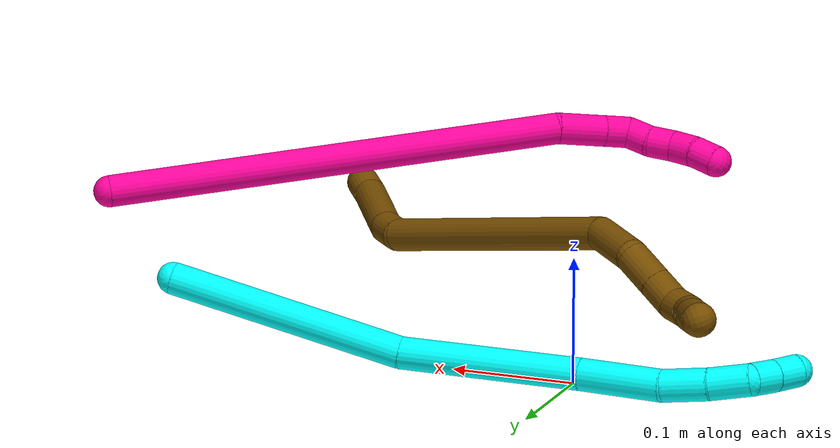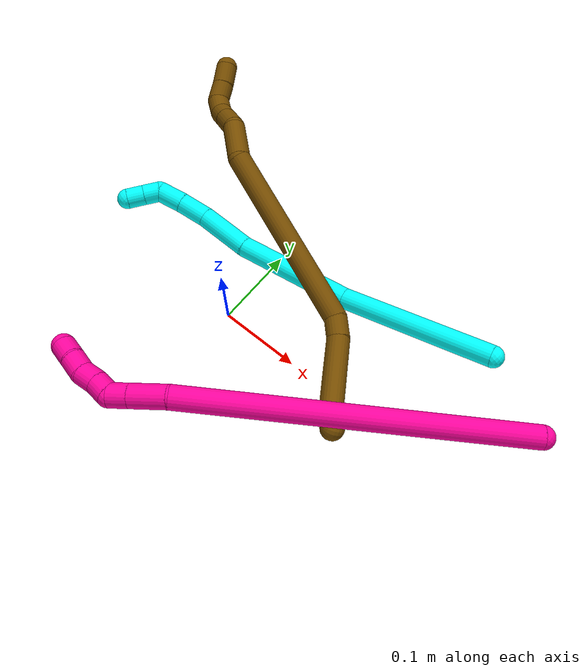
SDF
<sdf version="1.7">
 <world name="default">
  <model name="3">
   <static>0</static>
   <link name="3">
    <collision name="collision-cylinder-e_1_1_4">
     <pose>-0.07893 -0.010625 -0.047513 2.9216 -1.01809 -2.75086</pose>
     <geometry><cylinder><radius>0.0125</radius><length>0.185475</length></cylinder></geometry>
     <surface>
      <friction><ode><mu>1.16</mu><mu2>1.16</mu2><slip1>0</slip1><slip2>0</slip2></ode></friction>
      <contact><ode><kp>1e+06</kp><kd>1</kd><max_vel>0</max_vel><min_depth>0.001</min_depth></ode></contact>
     </surface>
    </collision>
    <visual name="visual-cylinder-e_1_1_4">
     <pose>-0.07893 -0.010625 -0.047513 2.9216 -1.01809 -2.75086</pose>
     <geometry><cylinder><radius>0.0125</radius><length>0.185475</length></cylinder></geometry>
     <material><ambient>0.003922 1 0.996078 1</ambient></material>
    </visual>
    <collision name="collision-cylinder-e_2_4_5">
     <pose>-0.218143 -0.042217 -0.124054 2.51603 -1.0348 -2.10811</pose>
     <geometry><cylinder><radius>0.0125</radius><length>0.140234</length></cylinder></geometry>
     <surface>
      <friction><ode><mu>1.16</mu><mu2>1.16</mu2><slip1>0</slip1><slip2>0</slip2></ode></friction>
      <contact><ode><kp>1e+06</kp><kd>1</kd><max_vel>0</max_vel><min_depth>0.001</min_depth></ode></contact>
     </surface>
    </collision>
    <visual name="visual-cylinder-e_2_4_5">
     <pose>-0.218143 -0.042217 -0.124054 2.51603 -1.0348 -2.10811</pose>
     <geometry><cylinder><radius>0.0125</radius><length>0.140234</length></cylinder></geometry>
     <material><ambient>0.003922 1 0.996078 1</ambient></material>
    </visual>
    <collision name="collision-cylinder-e_3_5_6">
     <pose>-0.308805 -0.071844 -0.161922 2.36656 -1.18395 -2.0505</pose>
     <geometry><cylinder><radius>0.0125</radius><length>0.065603</length></cylinder></geometry>
     <surface>
      <friction><ode><mu>1.16</mu><mu2>1.16</mu2><slip1>0</slip1><slip2>0</slip2></ode></friction>
      <contact><ode><kp>1e+06</kp><kd>1</kd><max_vel>0</max_vel><min_depth>0.001</min_depth></ode></contact>
     </surface>
    </collision>
    <visual name="visual-cylinder-e_3_5_6">
     <pose>-0.308805 -0.071844 -0.161922 2.36656 -1.18395 -2.0505</pose>
     <geometry><cylinder><radius>0.0125</radius><length>0.065603</length></cylinder></geometry>
     <material><ambient>0.003922 1 0.996078 1</ambient></material>
    </visual>
    <collision name="collision-cylinder-e_4_6_7">
     <pose>-0.354097 -0.088186 -0.176738 2.23187 -0.992611 -1.6725</pose>
     <geometry><cylinder><radius>0.0125</radius><length>0.035617</length></cylinder></geometry>
     <surface>
      <friction><ode><mu>1.16</mu><mu2>1.16</mu2><slip1>0</slip1><slip2>0</slip2></ode></friction>
      <contact><ode><kp>1e+06</kp><kd>1</kd><max_vel>0</max_vel><min_depth>0.001</min_depth></ode></contact>
     </surface>
    </collision>
    <visual name="visual-cylinder-e_4_6_7">
     <pose>-0.354097 -0.088186 -0.176738 2.23187 -0.992611 -1.6725</pose>
     <geometry><cylinder><radius>0.0125</radius><length>0.035617</length></cylinder></geometry>
     <material><ambient>0.003922 1 0.996078 1</ambient></material>
    </visual>
    <collision name="collision-cylinder-e_5_7_8">
     <pose>-0.381291 -0.103823 -0.188708 2.21655 -0.889319 -1.52546</pose>
     <geometry><cylinder><radius>0.0125</radius><length>0.031625</length></cylinder></geometry>
     <surface>
      <friction><ode><mu>1.16</mu><mu2>1.16</mu2><slip1>0</slip1><slip2>0</slip2></ode></friction>
      <contact><ode><kp>1e+06</kp><kd>1</kd><max_vel>0</max_vel><min_depth>0.001</min_depth></ode></contact>
     </surface>
    </collision>
    <visual name="visual-cylinder-e_5_7_8">
     <pose>-0.381291 -0.103823 -0.188708 2.21655 -0.889319 -1.52546</pose>
     <geometry><cylinder><radius>0.0125</radius><length>0.031625</length></cylinder></geometry>
     <material><ambient>0.003922 1 0.996078 1</ambient></material>
    </visual>
    <collision name="collision-cylinder-e_6_8_9">
     <pose>-0.395968 -0.116784 -0.20327 2.61283 -0.236929 -0.828433</pose>
     <geometry><cylinder><radius>0.0125</radius><length>0.020415</length></cylinder></geometry>
     <surface>
      <friction><ode><mu>1.16</mu><mu2>1.16</mu2><slip1>0</slip1><slip2>0</slip2></ode></friction>
      <contact><ode><kp>1e+06</kp><kd>1</kd><max_vel>0</max_vel><min_depth>0.001</min_depth></ode></contact>
     </surface>
    </collision>
    <visual name="visual-cylinder-e_6_8_9">
     <pose>-0.395968 -0.116784 -0.20327 2.61283 -0.236929 -0.828433</pose>
     <geometry><cylinder><radius>0.0125</radius><length>0.020415</length></cylinder></geometry>
     <material><ambient>0.003922 1 0.996078 1</ambient></material>
    </visual>
    <collision name="collision-cylinder-e_7_9_2">
     <pose>-0.400466 -0.127248 -0.220575 2.58323 -0.20129 -0.677397</pose>
     <geometry><cylinder><radius>0.0125</radius><length>0.02103</length></cylinder></geometry>
     <surface>
      <friction><ode><mu>1.16</mu><mu2>1.16</mu2><slip1>0</slip1><slip2>0</slip2></ode></friction>
      <contact><ode><kp>1e+06</kp><kd>1</kd><max_vel>0</max_vel><min_depth>0.001</min_depth></ode></contact>
     </surface>
    </collision>
    <visual name="visual-cylinder-e_7_9_2">
     <pose>-0.400466 -0.127248 -0.220575 2.58323 -0.20129 -0.677397</pose>
     <geometry><cylinder><radius>0.0125</radius><length>0.02103</length></cylinder></geometry>
     <material><ambient>0.003922 1 0.996078 1</ambient></material>
    </visual>
    <collision name="collision-sphere-2">
     <pose>-0.402569 -0.132706 -0.229313 0 -0 0</pose>
     <geometry><sphere><radius>0.0125</radius></sphere></geometry>
     <surface>
      <friction><ode><mu>1.16</mu><mu2>1.16</mu2><slip1>0</slip1><slip2>0</slip2></ode></friction>
      <contact><ode><kp>1e+06</kp><kd>1</kd><max_vel>0</max_vel><min_depth>0.001</min_depth></ode></contact>
     </surface>
    </collision>
    <visual name="visual-sphere-2">
     <pose>-0.402569 -0.132706 -0.229313 0 -0 0</pose>
     <geometry><sphere><radius>0.0125</radius></sphere></geometry>
     <material><ambient>0.003922 1 0.996078 1</ambient></material>
    </visual>
    <collision name="collision-sphere-9">
     <pose>-0.398364 -0.121789 -0.211837 0 -0 0</pose>
     <geometry><sphere><radius>0.0125</radius></sphere></geometry>
     <surface>
      <friction><ode><mu>1.16</mu><mu2>1.16</mu2><slip1>0</slip1><slip2>0</slip2></ode></friction>
      <contact><ode><kp>1e+06</kp><kd>1</kd><max_vel>0</max_vel><min_depth>0.001</min_depth></ode></contact>
     </surface>
    </collision>
    <visual name="visual-sphere-9">
     <pose>-0.398364 -0.121789 -0.211837 0 -0 0</pose>
     <geometry><sphere><radius>0.0125</radius></sphere></geometry>
     <material><ambient>0.003922 1 0.996078 1</ambient></material>
    </visual>
    <collision name="collision-sphere-4">
     <pose>-0.157859 -0.021249 -0.095026 0 -0 0</pose>
     <geometry><sphere><radius>0.0125</radius></sphere></geometry>
     <surface>
      <friction><ode><mu>1.16</mu><mu2>1.16</mu2><slip1>0</slip1><slip2>0</slip2></ode></friction>
      <contact><ode><kp>1e+06</kp><kd>1</kd><max_vel>0</max_vel><min_depth>0.001</min_depth></ode></contact>
     </surface>
    </collision>
    <visual name="visual-sphere-4">
     <pose>-0.157859 -0.021249 -0.095026 0 -0 0</pose>
     <geometry><sphere><radius>0.0125</radius></sphere></geometry>
     <material><ambient>0.003922 1 0.996078 1</ambient></material>
    </visual>
    <collision name="collision-sphere-1">
     <geometry><sphere><radius>0.0125</radius></sphere></geometry>
     <surface>
      <friction><ode><mu>1.16</mu><mu2>1.16</mu2><slip1>0</slip1><slip2>0</slip2></ode></friction>
      <contact><ode><kp>1e+06</kp><kd>1</kd><max_vel>0</max_vel><min_depth>0.001</min_depth></ode></contact>
     </surface>
    </collision>
    <visual name="visual-sphere-1">
     <geometry><sphere><radius>0.0125</radius></sphere></geometry>
     <material><ambient>0.003922 1 0.996078 1</ambient></material>
    </visual>
    <collision name="collision-sphere-8">
     <pose>-0.393572 -0.111779 -0.194703 0 -0 0</pose>
     <geometry><sphere><radius>0.0125</radius></sphere></geometry>
     <surface>
      <friction><ode><mu>1.16</mu><mu2>1.16</mu2><slip1>0</slip1><slip2>0</slip2></ode></friction>
      <contact><ode><kp>1e+06</kp><kd>1</kd><max_vel>0</max_vel><min_depth>0.001</min_depth></ode></contact>
     </surface>
    </collision>
    <visual name="visual-sphere-8">
     <pose>-0.393572 -0.111779 -0.194703 0 -0 0</pose>
     <geometry><sphere><radius>0.0125</radius></sphere></geometry>
     <material><ambient>0.003922 1 0.996078 1</ambient></material>
    </visual>
    <collision name="collision-sphere-5">
     <pose>-0.278427 -0.063185 -0.153081 0 -0 0</pose>
     <geometry><sphere><radius>0.0125</radius></sphere></geometry>
     <surface>
      <friction><ode><mu>1.16</mu><mu2>1.16</mu2><slip1>0</slip1><slip2>0</slip2></ode></friction>
      <contact><ode><kp>1e+06</kp><kd>1</kd><max_vel>0</max_vel><min_depth>0.001</min_depth></ode></contact>
     </surface>
    </collision>
    <visual name="visual-sphere-5">
     <pose>-0.278427 -0.063185 -0.153081 0 -0 0</pose>
     <geometry><sphere><radius>0.0125</radius></sphere></geometry>
     <material><ambient>0.003922 1 0.996078 1</ambient></material>
    </visual>
    <collision name="collision-sphere-6">
     <pose>-0.339183 -0.080504 -0.170763 0 -0 0</pose>
     <geometry><sphere><radius>0.0125</radius></sphere></geometry>
     <surface>
      <friction><ode><mu>1.16</mu><mu2>1.16</mu2><slip1>0</slip1><slip2>0</slip2></ode></friction>
      <contact><ode><kp>1e+06</kp><kd>1</kd><max_vel>0</max_vel><min_depth>0.001</min_depth></ode></contact>
     </surface>
    </collision>
    <visual name="visual-sphere-6">
     <pose>-0.339183 -0.080504 -0.170763 0 -0 0</pose>
     <geometry><sphere><radius>0.0125</radius></sphere></geometry>
     <material><ambient>0.003922 1 0.996078 1</ambient></material>
    </visual>
    <collision name="collision-sphere-7">
     <pose>-0.369011 -0.095868 -0.182714 0 -0 0</pose>
     <geometry><sphere><radius>0.0125</radius></sphere></geometry>
     <surface>
      <friction><ode><mu>1.16</mu><mu2>1.16</mu2><slip1>0</slip1><slip2>0</slip2></ode></friction>
      <contact><ode><kp>1e+06</kp><kd>1</kd><max_vel>0</max_vel><min_depth>0.001</min_depth></ode></contact>
     </surface>
    </collision>
    <visual name="visual-sphere-7">
     <pose>-0.369011 -0.095868 -0.182714 0 -0 0</pose>
     <geometry><sphere><radius>0.0125</radius></sphere></geometry>
     <material><ambient>0.003922 1 0.996078 1</ambient></material>
    </visual>
    <inertial>
     <pose>-0.21333 -0.048177 -0.115766 0 -0 0</pose>
     <mass>0.5</mass>
     <inertia>
      <ixx>-0.000584</ixx>
      <ixy>0</ixy>
      <ixz>0</ixz>
      <iyy>0.000514</iyy>
      <iyz>0</iyz>
      <izz>0.00082</izz>
     </inertia>
    </inertial>
   </link>
   <pose>0.282708 0.118243 0.084535 -1.06201 -0.119739 -0.39834</pose>
  </model>
  <model name="12">
   <static>0</static>
   <link name="12">
    <collision name="collision-cylinder-e_1_1_4">
     <pose>-0.009031 0.004688 -0.001016 -1.78414 -1.08258 1.28106</pose>
     <geometry><cylinder><radius>0.0125</radius><length>0.020452</length></cylinder></geometry>
     <surface>
      <friction><ode><mu>1.16</mu><mu2>1.16</mu2><slip1>0</slip1><slip2>0</slip2></ode></friction>
      <contact><ode><kp>1e+06</kp><kd>1</kd><max_vel>0</max_vel><min_depth>0.001</min_depth></ode></contact>
     </surface>
    </collision>
    <visual name="visual-cylinder-e_1_1_4">
     <pose>-0.009031 0.004688 -0.001016 -1.78414 -1.08258 1.28106</pose>
     <geometry><cylinder><radius>0.0125</radius><length>0.020452</length></cylinder></geometry>
     <material><ambient>0.466667 0.301961 0 1</ambient></material>
    </visual>
    <collision name="collision-cylinder-e_2_4_5">
     <pose>-0.056456 0.020178 -0.002693 -1.63202 -1.29604 1.35546</pose>
     <geometry><cylinder><radius>0.0125</radius><length>0.07978</length></cylinder></geometry>
     <surface>
      <friction><ode><mu>1.16</mu><mu2>1.16</mu2><slip1>0</slip1><slip2>0</slip2></ode></friction>
      <contact><ode><kp>1e+06</kp><kd>1</kd><max_vel>0</max_vel><min_depth>0.001</min_depth></ode></contact>
     </surface>
    </collision>
    <visual name="visual-cylinder-e_2_4_5">
     <pose>-0.056456 0.020178 -0.002693 -1.63202 -1.29604 1.35546</pose>
     <geometry><cylinder><radius>0.0125</radius><length>0.07978</length></cylinder></geometry>
     <material><ambient>0.466667 0.301961 0 1</ambient></material>
    </visual>
    <collision name="collision-cylinder-e_3_5_6">
     <pose>-0.106057 0.034224 -0.006202 -2.29116 -1.20326 1.97539</pose>
     <geometry><cylinder><radius>0.0125</radius><length>0.024019</length></cylinder></geometry>
     <surface>
      <friction><ode><mu>1.16</mu><mu2>1.16</mu2><slip1>0</slip1><slip2>0</slip2></ode></friction>
      <contact><ode><kp>1e+06</kp><kd>1</kd><max_vel>0</max_vel><min_depth>0.001</min_depth></ode></contact>
     </surface>
    </collision>
    <visual name="visual-cylinder-e_3_5_6">
     <pose>-0.106057 0.034224 -0.006202 -2.29116 -1.20326 1.97539</pose>
     <geometry><cylinder><radius>0.0125</radius><length>0.024019</length></cylinder></geometry>
     <material><ambient>0.466667 0.301961 0 1</ambient></material>
    </visual>
    <collision name="collision-cylinder-e_4_6_7">
     <pose>-0.194381 0.054012 -0.077411 -2.90413 -0.831353 2.61368</pose>
     <geometry><cylinder><radius>0.0125</radius><length>0.208751</length></cylinder></geometry>
     <surface>
      <friction><ode><mu>1.16</mu><mu2>1.16</mu2><slip1>0</slip1><slip2>0</slip2></ode></friction>
      <contact><ode><kp>1e+06</kp><kd>1</kd><max_vel>0</max_vel><min_depth>0.001</min_depth></ode></contact>
     </surface>
    </collision>
    <visual name="visual-cylinder-e_4_6_7">
     <pose>-0.194381 0.054012 -0.077411 -2.90413 -0.831353 2.61368</pose>
     <geometry><cylinder><radius>0.0125</radius><length>0.208751</length></cylinder></geometry>
     <material><ambient>0.466667 0.301961 0 1</ambient></material>
    </visual>
    <collision name="collision-cylinder-e_5_7_8">
     <pose>-0.292691 0.07953 -0.152168 -2.18998 -1.09137 1.73415</pose>
     <geometry><cylinder><radius>0.0125</radius><length>0.047771</length></cylinder></geometry>
     <surface>
      <friction><ode><mu>1.16</mu><mu2>1.16</mu2><slip1>0</slip1><slip2>0</slip2></ode></friction>
      <contact><ode><kp>1e+06</kp><kd>1</kd><max_vel>0</max_vel><min_depth>0.001</min_depth></ode></contact>
     </surface>
    </collision>
    <visual name="visual-cylinder-e_5_7_8">
     <pose>-0.292691 0.07953 -0.152168 -2.18998 -1.09137 1.73415</pose>
     <geometry><cylinder><radius>0.0125</radius><length>0.047771</length></cylinder></geometry>
     <material><ambient>0.466667 0.301961 0 1</ambient></material>
    </visual>
    <collision name="collision-cylinder-e_6_8_9">
     <pose>-0.322916 0.099696 -0.162987 -1.9472 -0.643797 0.911905</pose>
     <geometry><cylinder><radius>0.0125</radius><length>0.030097</length></cylinder></geometry>
     <surface>
      <friction><ode><mu>1.16</mu><mu2>1.16</mu2><slip1>0</slip1><slip2>0</slip2></ode></friction>
      <contact><ode><kp>1e+06</kp><kd>1</kd><max_vel>0</max_vel><min_depth>0.001</min_depth></ode></contact>
     </surface>
    </collision>
    <visual name="visual-cylinder-e_6_8_9">
     <pose>-0.322916 0.099696 -0.162987 -1.9472 -0.643797 0.911905</pose>
     <geometry><cylinder><radius>0.0125</radius><length>0.030097</length></cylinder></geometry>
     <material><ambient>0.466667 0.301961 0 1</ambient></material>
    </visual>
    <collision name="collision-cylinder-e_7_9_10">
     <pose>-0.33858 0.119177 -0.170697 -1.94831 -0.639515 0.907203</pose>
     <geometry><cylinder><radius>0.0125</radius><length>0.022222</length></cylinder></geometry>
     <surface>
      <friction><ode><mu>1.16</mu><mu2>1.16</mu2><slip1>0</slip1><slip2>0</slip2></ode></friction>
      <contact><ode><kp>1e+06</kp><kd>1</kd><max_vel>0</max_vel><min_depth>0.001</min_depth></ode></contact>
     </surface>
    </collision>
    <visual name="visual-cylinder-e_7_9_10">
     <pose>-0.33858 0.119177 -0.170697 -1.94831 -0.639515 0.907203</pose>
     <geometry><cylinder><radius>0.0125</radius><length>0.022222</length></cylinder></geometry>
     <material><ambient>0.466667 0.301961 0 1</ambient></material>
    </visual>
    <collision name="collision-cylinder-e_8_10_11">
     <pose>-0.35391 0.131157 -0.177415 -2.31962 -1.04564 1.84669</pose>
     <geometry><cylinder><radius>0.0125</radius><length>0.020106</length></cylinder></geometry>
     <surface>
      <friction><ode><mu>1.16</mu><mu2>1.16</mu2><slip1>0</slip1><slip2>0</slip2></ode></friction>
      <contact><ode><kp>1e+06</kp><kd>1</kd><max_vel>0</max_vel><min_depth>0.001</min_depth></ode></contact>
     </surface>
    </collision>
    <visual name="visual-cylinder-e_8_10_11">
     <pose>-0.35391 0.131157 -0.177415 -2.31962 -1.04564 1.84669</pose>
     <geometry><cylinder><radius>0.0125</radius><length>0.020106</length></cylinder></geometry>
     <material><ambient>0.466667 0.301961 0 1</ambient></material>
    </visual>
    <collision name="collision-cylinder-e_9_11_12">
     <pose>-0.373345 0.134769 -0.180623 0.34324 -1.54879 -0.335911</pose>
     <geometry><cylinder><radius>0.0125</radius><length>0.021477</length></cylinder></geometry>
     <surface>
      <friction><ode><mu>1.16</mu><mu2>1.16</mu2><slip1>0</slip1><slip2>0</slip2></ode></friction>
      <contact><ode><kp>1e+06</kp><kd>1</kd><max_vel>0</max_vel><min_depth>0.001</min_depth></ode></contact>
     </surface>
    </collision>
    <visual name="visual-cylinder-e_9_11_12">
     <pose>-0.373345 0.134769 -0.180623 0.34324 -1.54879 -0.335911</pose>
     <geometry><cylinder><radius>0.0125</radius><length>0.021477</length></cylinder></geometry>
     <material><ambient>0.466667 0.301961 0 1</ambient></material>
    </visual>
    <collision name="collision-cylinder-e_10_12_2">
     <pose>-0.396716 0.135253 -0.180997 -2.38403 -1.506 2.33842</pose>
     <geometry><cylinder><radius>0.0125</radius><length>0.025325</length></cylinder></geometry>
     <surface>
      <friction><ode><mu>1.16</mu><mu2>1.16</mu2><slip1>0</slip1><slip2>0</slip2></ode></friction>
      <contact><ode><kp>1e+06</kp><kd>1</kd><max_vel>0</max_vel><min_depth>0.001</min_depth></ode></contact>
     </surface>
    </collision>
    <visual name="visual-cylinder-e_10_12_2">
     <pose>-0.396716 0.135253 -0.180997 -2.38403 -1.506 2.33842</pose>
     <geometry><cylinder><radius>0.0125</radius><length>0.025325</length></cylinder></geometry>
     <material><ambient>0.466667 0.301961 0 1</ambient></material>
    </visual>
    <collision name="collision-sphere-2">
     <pose>-0.409352 0.135816 -0.181592 0 -0 0</pose>
     <geometry><sphere><radius>0.0125</radius></sphere></geometry>
     <surface>
      <friction><ode><mu>1.16</mu><mu2>1.16</mu2><slip1>0</slip1><slip2>0</slip2></ode></friction>
      <contact><ode><kp>1e+06</kp><kd>1</kd><max_vel>0</max_vel><min_depth>0.001</min_depth></ode></contact>
     </surface>
    </collision>
    <visual name="visual-sphere-2">
     <pose>-0.409352 0.135816 -0.181592 0 -0 0</pose>
     <geometry><sphere><radius>0.0125</radius></sphere></geometry>
     <material><ambient>0.466667 0.301961 0 1</ambient></material>
    </visual>
    <collision name="collision-sphere-12">
     <pose>-0.384081 0.13469 -0.180401 0 -0 0</pose>
     <geometry><sphere><radius>0.0125</radius></sphere></geometry>
     <surface>
      <friction><ode><mu>1.16</mu><mu2>1.16</mu2><slip1>0</slip1><slip2>0</slip2></ode></friction>
      <contact><ode><kp>1e+06</kp><kd>1</kd><max_vel>0</max_vel><min_depth>0.001</min_depth></ode></contact>
     </surface>
    </collision>
    <visual name="visual-sphere-12">
     <pose>-0.384081 0.13469 -0.180401 0 -0 0</pose>
     <geometry><sphere><radius>0.0125</radius></sphere></geometry>
     <material><ambient>0.466667 0.301961 0 1</ambient></material>
    </visual>
    <collision name="collision-sphere-11">
     <pose>-0.362608 0.134849 -0.180846 0 -0 0</pose>
     <geometry><sphere><radius>0.0125</radius></sphere></geometry>
     <surface>
      <friction><ode><mu>1.16</mu><mu2>1.16</mu2><slip1>0</slip1><slip2>0</slip2></ode></friction>
      <contact><ode><kp>1e+06</kp><kd>1</kd><max_vel>0</max_vel><min_depth>0.001</min_depth></ode></contact>
     </surface>
    </collision>
    <visual name="visual-sphere-11">
     <pose>-0.362608 0.134849 -0.180846 0 -0 0</pose>
     <geometry><sphere><radius>0.0125</radius></sphere></geometry>
     <material><ambient>0.466667 0.301961 0 1</ambient></material>
    </visual>
    <collision name="collision-sphere-10">
     <pose>-0.345211 0.127465 -0.173984 0 -0 0</pose>
     <geometry><sphere><radius>0.0125</radius></sphere></geometry>
     <surface>
      <friction><ode><mu>1.16</mu><mu2>1.16</mu2><slip1>0</slip1><slip2>0</slip2></ode></friction>
      <contact><ode><kp>1e+06</kp><kd>1</kd><max_vel>0</max_vel><min_depth>0.001</min_depth></ode></contact>
     </surface>
    </collision>
    <visual name="visual-sphere-10">
     <pose>-0.345211 0.127465 -0.173984 0 -0 0</pose>
     <geometry><sphere><radius>0.0125</radius></sphere></geometry>
     <material><ambient>0.466667 0.301961 0 1</ambient></material>
    </visual>
    <collision name="collision-sphere-9">
     <pose>-0.331949 0.11089 -0.167411 0 -0 0</pose>
     <geometry><sphere><radius>0.0125</radius></sphere></geometry>
     <surface>
      <friction><ode><mu>1.16</mu><mu2>1.16</mu2><slip1>0</slip1><slip2>0</slip2></ode></friction>
      <contact><ode><kp>1e+06</kp><kd>1</kd><max_vel>0</max_vel><min_depth>0.001</min_depth></ode></contact>
     </surface>
    </collision>
    <visual name="visual-sphere-9">
     <pose>-0.331949 0.11089 -0.167411 0 -0 0</pose>
     <geometry><sphere><radius>0.0125</radius></sphere></geometry>
     <material><ambient>0.466667 0.301961 0 1</ambient></material>
    </visual>
    <collision name="collision-sphere-4">
     <pose>-0.018062 0.009375 -0.002031 0 -0 0</pose>
     <geometry><sphere><radius>0.0125</radius></sphere></geometry>
     <surface>
      <friction><ode><mu>1.16</mu><mu2>1.16</mu2><slip1>0</slip1><slip2>0</slip2></ode></friction>
      <contact><ode><kp>1e+06</kp><kd>1</kd><max_vel>0</max_vel><min_depth>0.001</min_depth></ode></contact>
     </surface>
    </collision>
    <visual name="visual-sphere-4">
     <pose>-0.018062 0.009375 -0.002031 0 -0 0</pose>
     <geometry><sphere><radius>0.0125</radius></sphere></geometry>
     <material><ambient>0.466667 0.301961 0 1</ambient></material>
    </visual>
    <collision name="collision-sphere-1">
     <geometry><sphere><radius>0.0125</radius></sphere></geometry>
     <surface>
      <friction><ode><mu>1.16</mu><mu2>1.16</mu2><slip1>0</slip1><slip2>0</slip2></ode></friction>
      <contact><ode><kp>1e+06</kp><kd>1</kd><max_vel>0</max_vel><min_depth>0.001</min_depth></ode></contact>
     </surface>
    </collision>
    <visual name="visual-sphere-1">
     <geometry><sphere><radius>0.0125</radius></sphere></geometry>
     <material><ambient>0.466667 0.301961 0 1</ambient></material>
    </visual>
    <collision name="collision-sphere-8">
     <pose>-0.313883 0.088502 -0.158562 0 -0 0</pose>
     <geometry><sphere><radius>0.0125</radius></sphere></geometry>
     <surface>
      <friction><ode><mu>1.16</mu><mu2>1.16</mu2><slip1>0</slip1><slip2>0</slip2></ode></friction>
      <contact><ode><kp>1e+06</kp><kd>1</kd><max_vel>0</max_vel><min_depth>0.001</min_depth></ode></contact>
     </surface>
    </collision>
    <visual name="visual-sphere-8">
     <pose>-0.313883 0.088502 -0.158562 0 -0 0</pose>
     <geometry><sphere><radius>0.0125</radius></sphere></geometry>
     <material><ambient>0.466667 0.301961 0 1</ambient></material>
    </visual>
    <collision name="collision-sphere-5">
     <pose>-0.094849 0.03098 -0.003356 0 -0 0</pose>
     <geometry><sphere><radius>0.0125</radius></sphere></geometry>
     <surface>
      <friction><ode><mu>1.16</mu><mu2>1.16</mu2><slip1>0</slip1><slip2>0</slip2></ode></friction>
      <contact><ode><kp>1e+06</kp><kd>1</kd><max_vel>0</max_vel><min_depth>0.001</min_depth></ode></contact>
     </surface>
    </collision>
    <visual name="visual-sphere-5">
     <pose>-0.094849 0.03098 -0.003356 0 -0 0</pose>
     <geometry><sphere><radius>0.0125</radius></sphere></geometry>
     <material><ambient>0.466667 0.301961 0 1</ambient></material>
    </visual>
    <collision name="collision-sphere-6">
     <pose>-0.117264 0.037467 -0.009049 0 -0 0</pose>
     <geometry><sphere><radius>0.0125</radius></sphere></geometry>
     <surface>
      <friction><ode><mu>1.16</mu><mu2>1.16</mu2><slip1>0</slip1><slip2>0</slip2></ode></friction>
      <contact><ode><kp>1e+06</kp><kd>1</kd><max_vel>0</max_vel><min_depth>0.001</min_depth></ode></contact>
     </surface>
    </collision>
    <visual name="visual-sphere-6">
     <pose>-0.117264 0.037467 -0.009049 0 -0 0</pose>
     <geometry><sphere><radius>0.0125</radius></sphere></geometry>
     <material><ambient>0.466667 0.301961 0 1</ambient></material>
    </visual>
    <collision name="collision-sphere-7">
     <pose>-0.271499 0.070558 -0.145774 0 -0 0</pose>
     <geometry><sphere><radius>0.0125</radius></sphere></geometry>
     <surface>
      <friction><ode><mu>1.16</mu><mu2>1.16</mu2><slip1>0</slip1><slip2>0</slip2></ode></friction>
      <contact><ode><kp>1e+06</kp><kd>1</kd><max_vel>0</max_vel><min_depth>0.001</min_depth></ode></contact>
     </surface>
    </collision>
    <visual name="visual-sphere-7">
     <pose>-0.271499 0.070558 -0.145774 0 -0 0</pose>
     <geometry><sphere><radius>0.0125</radius></sphere></geometry>
     <material><ambient>0.466667 0.301961 0 1</ambient></material>
    </visual>
    <inertial>
     <pose>-0.208439 0.064416 -0.089085 0 -0 0</pose>
     <mass>0.5</mass>
     <inertia>
      <ixx>-0.000191</ixx>
      <ixy>0</ixy>
      <ixz>0</ixz>
      <iyy>0.001064</iyy>
      <iyz>0</iyz>
      <izz>0.000473</izz>
     </inertia>
    </inertial>
   </link>
   <pose>0.203386 -0.062874 0.125242 -1.88758 0.18164 -1.10529</pose>
  </model>
  <model name="18">
   <static>0</static>
   <link name="18">
    <collision name="collision-cylinder-e_1_1_4">
     <pose>-0.143819 0.000424 -0.109061 -3.1377 -0.921986 3.13376</pose>
     <geometry><cylinder><radius>0.0125</radius><length>0.360989</length></cylinder></geometry>
     <surface>
      <friction><ode><mu>1.16</mu><mu2>1.16</mu2><slip1>0</slip1><slip2>0</slip2></ode></friction>
      <contact><ode><kp>1e+06</kp><kd>1</kd><max_vel>0</max_vel><min_depth>0.001</min_depth></ode></contact>
     </surface>
    </collision>
    <visual name="visual-cylinder-e_1_1_4">
     <pose>-0.143819 0.000424 -0.109061 -3.1377 -0.921986 3.13376</pose>
     <geometry><cylinder><radius>0.0125</radius><length>0.360989</length></cylinder></geometry>
     <material><ambient>1 0.007843 0.615686 1</ambient></material>
    </visual>
    <collision name="collision-cylinder-e_2_4_5">
     <pose>-0.300833 0.003434 -0.231714 -2.95361 -0.761711 2.67915</pose>
     <geometry><cylinder><radius>0.0125</radius><length>0.038239</length></cylinder></geometry>
     <surface>
      <friction><ode><mu>1.16</mu><mu2>1.16</mu2><slip1>0</slip1><slip2>0</slip2></ode></friction>
      <contact><ode><kp>1e+06</kp><kd>1</kd><max_vel>0</max_vel><min_depth>0.001</min_depth></ode></contact>
     </surface>
    </collision>
    <visual name="visual-cylinder-e_2_4_5">
     <pose>-0.300833 0.003434 -0.231714 -2.95361 -0.761711 2.67915</pose>
     <geometry><cylinder><radius>0.0125</radius><length>0.038239</length></cylinder></geometry>
     <material><ambient>1 0.007843 0.615686 1</ambient></material>
    </visual>
    <collision name="collision-cylinder-e_3_5_6">
     <pose>-0.321071 0.007408 -0.252587 -2.95316 -0.759843 2.67685</pose>
     <geometry><cylinder><radius>0.0125</radius><length>0.020447</length></cylinder></geometry>
     <surface>
      <friction><ode><mu>1.16</mu><mu2>1.16</mu2><slip1>0</slip1><slip2>0</slip2></ode></friction>
      <contact><ode><kp>1e+06</kp><kd>1</kd><max_vel>0</max_vel><min_depth>0.001</min_depth></ode></contact>
     </surface>
    </collision>
    <visual name="visual-cylinder-e_3_5_6">
     <pose>-0.321071 0.007408 -0.252587 -2.95316 -0.759843 2.67685</pose>
     <geometry><cylinder><radius>0.0125</radius><length>0.020447</length></cylinder></geometry>
     <material><ambient>1 0.007843 0.615686 1</ambient></material>
    </visual>
    <collision name="collision-cylinder-e_4_6_7">
     <pose>-0.335265 0.015595 -0.26221 -1.90271 -0.782753 1.04925</pose>
     <geometry><cylinder><radius>0.0125</radius><length>0.020284</length></cylinder></geometry>
     <surface>
      <friction><ode><mu>1.16</mu><mu2>1.16</mu2><slip1>0</slip1><slip2>0</slip2></ode></friction>
      <contact><ode><kp>1e+06</kp><kd>1</kd><max_vel>0</max_vel><min_depth>0.001</min_depth></ode></contact>
     </surface>
    </collision>
    <visual name="visual-cylinder-e_4_6_7">
     <pose>-0.335265 0.015595 -0.26221 -1.90271 -0.782753 1.04925</pose>
     <geometry><cylinder><radius>0.0125</radius><length>0.020284</length></cylinder></geometry>
     <material><ambient>1 0.007843 0.615686 1</ambient></material>
    </visual>
    <collision name="collision-cylinder-e_5_7_8">
     <pose>-0.350496 0.027314 -0.267855 -2.1618 -0.937881 1.51961</pose>
     <geometry><cylinder><radius>0.0125</radius><length>0.020038</length></cylinder></geometry>
     <surface>
      <friction><ode><mu>1.16</mu><mu2>1.16</mu2><slip1>0</slip1><slip2>0</slip2></ode></friction>
      <contact><ode><kp>1e+06</kp><kd>1</kd><max_vel>0</max_vel><min_depth>0.001</min_depth></ode></contact>
     </surface>
    </collision>
    <visual name="visual-cylinder-e_5_7_8">
     <pose>-0.350496 0.027314 -0.267855 -2.1618 -0.937881 1.51961</pose>
     <geometry><cylinder><radius>0.0125</radius><length>0.020038</length></cylinder></geometry>
     <material><ambient>1 0.007843 0.615686 1</ambient></material>
    </visual>
    <collision name="collision-cylinder-e_6_8_9">
     <pose>-0.366388 0.038448 -0.271761 -1.66771 -0.896718 0.974816</pose>
     <geometry><cylinder><radius>0.0125</radius><length>0.020002</length></cylinder></geometry>
     <surface>
      <friction><ode><mu>1.16</mu><mu2>1.16</mu2><slip1>0</slip1><slip2>0</slip2></ode></friction>
      <contact><ode><kp>1e+06</kp><kd>1</kd><max_vel>0</max_vel><min_depth>0.001</min_depth></ode></contact>
     </surface>
    </collision>
    <visual name="visual-cylinder-e_6_8_9">
     <pose>-0.366388 0.038448 -0.271761 -1.66771 -0.896718 0.974816</pose>
     <geometry><cylinder><radius>0.0125</radius><length>0.020002</length></cylinder></geometry>
     <material><ambient>1 0.007843 0.615686 1</ambient></material>
    </visual>
    <collision name="collision-cylinder-e_7_9_2">
     <pose>-0.381057 0.051787 -0.273858 -1.77727 -0.755302 0.908633</pose>
     <geometry><cylinder><radius>0.0125</radius><length>0.02</length></cylinder></geometry>
     <surface>
      <friction><ode><mu>1.16</mu><mu2>1.16</mu2><slip1>0</slip1><slip2>0</slip2></ode></friction>
      <contact><ode><kp>1e+06</kp><kd>1</kd><max_vel>0</max_vel><min_depth>0.001</min_depth></ode></contact>
     </surface>
    </collision>
    <visual name="visual-cylinder-e_7_9_2">
     <pose>-0.381057 0.051787 -0.273858 -1.77727 -0.755302 0.908633</pose>
     <geometry><cylinder><radius>0.0125</radius><length>0.02</length></cylinder></geometry>
     <material><ambient>1 0.007843 0.615686 1</ambient></material>
    </visual>
    <collision name="collision-sphere-2">
     <pose>-0.387912 0.058913 -0.275351 0 -0 0</pose>
     <geometry><sphere><radius>0.0125</radius></sphere></geometry>
     <surface>
      <friction><ode><mu>1.16</mu><mu2>1.16</mu2><slip1>0</slip1><slip2>0</slip2></ode></friction>
      <contact><ode><kp>1e+06</kp><kd>1</kd><max_vel>0</max_vel><min_depth>0.001</min_depth></ode></contact>
     </surface>
    </collision>
    <visual name="visual-sphere-2">
     <pose>-0.387912 0.058913 -0.275351 0 -0 0</pose>
     <geometry><sphere><radius>0.0125</radius></sphere></geometry>
     <material><ambient>1 0.007843 0.615686 1</ambient></material>
    </visual>
    <collision name="collision-sphere-9">
     <pose>-0.374202 0.044661 -0.272365 0 -0 0</pose>
     <geometry><sphere><radius>0.0125</radius></sphere></geometry>
     <surface>
      <friction><ode><mu>1.16</mu><mu2>1.16</mu2><slip1>0</slip1><slip2>0</slip2></ode></friction>
      <contact><ode><kp>1e+06</kp><kd>1</kd><max_vel>0</max_vel><min_depth>0.001</min_depth></ode></contact>
     </surface>
    </collision>
    <visual name="visual-sphere-9">
     <pose>-0.374202 0.044661 -0.272365 0 -0 0</pose>
     <geometry><sphere><radius>0.0125</radius></sphere></geometry>
     <material><ambient>1 0.007843 0.615686 1</ambient></material>
    </visual>
    <collision name="collision-sphere-4">
     <pose>-0.287638 0.000849 -0.218122 0 -0 0</pose>
     <geometry><sphere><radius>0.0125</radius></sphere></geometry>
     <surface>
      <friction><ode><mu>1.16</mu><mu2>1.16</mu2><slip1>0</slip1><slip2>0</slip2></ode></friction>
      <contact><ode><kp>1e+06</kp><kd>1</kd><max_vel>0</max_vel><min_depth>0.001</min_depth></ode></contact>
     </surface>
    </collision>
    <visual name="visual-sphere-4">
     <pose>-0.287638 0.000849 -0.218122 0 -0 0</pose>
     <geometry><sphere><radius>0.0125</radius></sphere></geometry>
     <material><ambient>1 0.007843 0.615686 1</ambient></material>
    </visual>
    <collision name="collision-sphere-1">
     <geometry><sphere><radius>0.0125</radius></sphere></geometry>
     <surface>
      <friction><ode><mu>1.16</mu><mu2>1.16</mu2><slip1>0</slip1><slip2>0</slip2></ode></friction>
      <contact><ode><kp>1e+06</kp><kd>1</kd><max_vel>0</max_vel><min_depth>0.001</min_depth></ode></contact>
     </surface>
    </collision>
    <visual name="visual-sphere-1">
     <geometry><sphere><radius>0.0125</radius></sphere></geometry>
     <material><ambient>1 0.007843 0.615686 1</ambient></material>
    </visual>
    <collision name="collision-sphere-8">
     <pose>-0.358575 0.032235 -0.271157 0 -0 0</pose>
     <geometry><sphere><radius>0.0125</radius></sphere></geometry>
     <surface>
      <friction><ode><mu>1.16</mu><mu2>1.16</mu2><slip1>0</slip1><slip2>0</slip2></ode></friction>
      <contact><ode><kp>1e+06</kp><kd>1</kd><max_vel>0</max_vel><min_depth>0.001</min_depth></ode></contact>
     </surface>
    </collision>
    <visual name="visual-sphere-8">
     <pose>-0.358575 0.032235 -0.271157 0 -0 0</pose>
     <geometry><sphere><radius>0.0125</radius></sphere></geometry>
     <material><ambient>1 0.007843 0.615686 1</ambient></material>
    </visual>
    <collision name="collision-sphere-5">
     <pose>-0.314029 0.00602 -0.245307 0 -0 0</pose>
     <geometry><sphere><radius>0.0125</radius></sphere></geometry>
     <surface>
      <friction><ode><mu>1.16</mu><mu2>1.16</mu2><slip1>0</slip1><slip2>0</slip2></ode></friction>
      <contact><ode><kp>1e+06</kp><kd>1</kd><max_vel>0</max_vel><min_depth>0.001</min_depth></ode></contact>
     </surface>
    </collision>
    <visual name="visual-sphere-5">
     <pose>-0.314029 0.00602 -0.245307 0 -0 0</pose>
     <geometry><sphere><radius>0.0125</radius></sphere></geometry>
     <material><ambient>1 0.007843 0.615686 1</ambient></material>
    </visual>
    <collision name="collision-sphere-6">
     <pose>-0.328113 0.008797 -0.259867 0 -0 0</pose>
     <geometry><sphere><radius>0.0125</radius></sphere></geometry>
     <surface>
      <friction><ode><mu>1.16</mu><mu2>1.16</mu2><slip1>0</slip1><slip2>0</slip2></ode></friction>
      <contact><ode><kp>1e+06</kp><kd>1</kd><max_vel>0</max_vel><min_depth>0.001</min_depth></ode></contact>
     </surface>
    </collision>
    <visual name="visual-sphere-6">
     <pose>-0.328113 0.008797 -0.259867 0 -0 0</pose>
     <geometry><sphere><radius>0.0125</radius></sphere></geometry>
     <material><ambient>1 0.007843 0.615686 1</ambient></material>
    </visual>
    <collision name="collision-sphere-7">
     <pose>-0.342418 0.022392 -0.264553 0 -0 0</pose>
     <geometry><sphere><radius>0.0125</radius></sphere></geometry>
     <surface>
      <friction><ode><mu>1.16</mu><mu2>1.16</mu2><slip1>0</slip1><slip2>0</slip2></ode></friction>
      <contact><ode><kp>1e+06</kp><kd>1</kd><max_vel>0</max_vel><min_depth>0.001</min_depth></ode></contact>
     </surface>
    </collision>
    <visual name="visual-sphere-7">
     <pose>-0.342418 0.022392 -0.264553 0 -0 0</pose>
     <geometry><sphere><radius>0.0125</radius></sphere></geometry>
     <material><ambient>1 0.007843 0.615686 1</ambient></material>
    </visual>
    <inertial>
     <pose>-0.197518 0.006209 -0.149988 0 -0 0</pose>
     <mass>0.5</mass>
     <inertia>
      <ixx>-0.002386</ixx>
      <ixy>0</ixy>
      <ixz>0</ixz>
      <iyy>0.003973</iyy>
      <iyz>0</iyz>
      <izz>0.003109</izz>
     </inertia>
    </inertial>
   </link>
   <pose>0.367411 0.056798 0.129955 -0.966517 0.513466 0.077065</pose>
  </model>
 </world>
</sdf>
